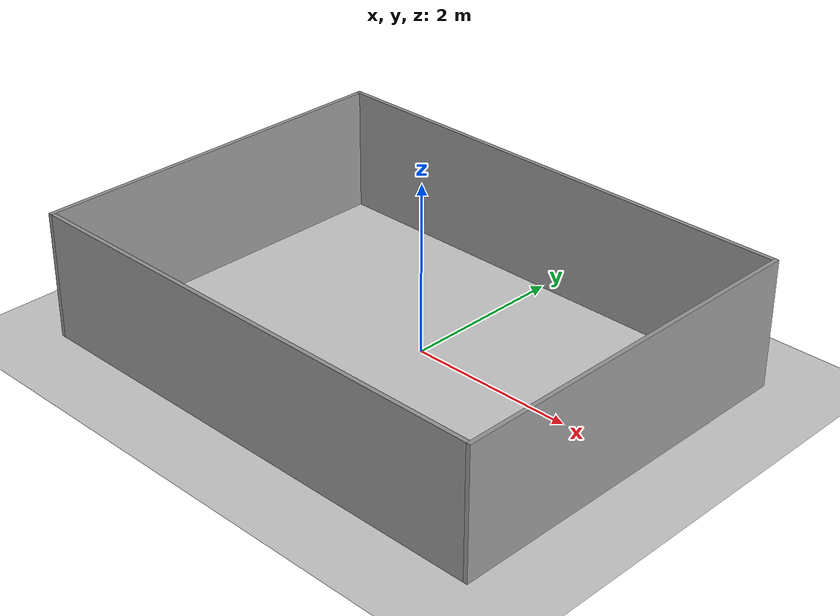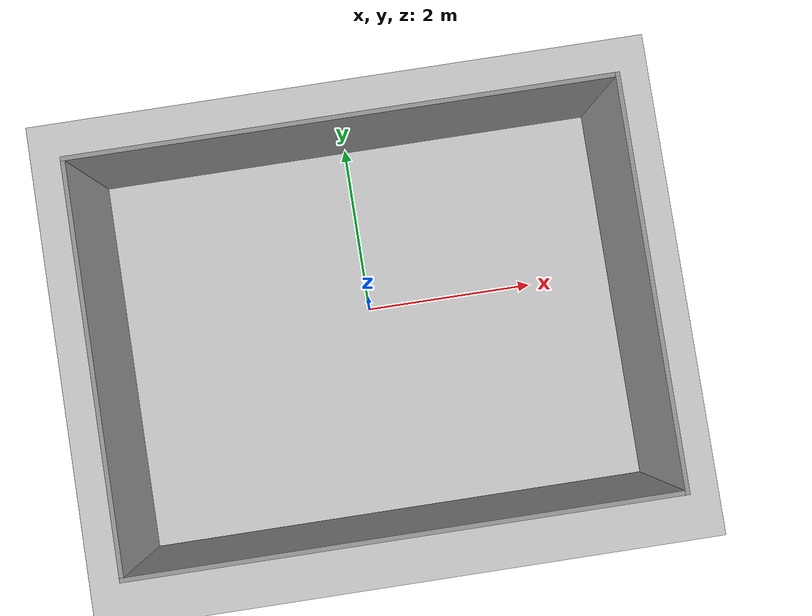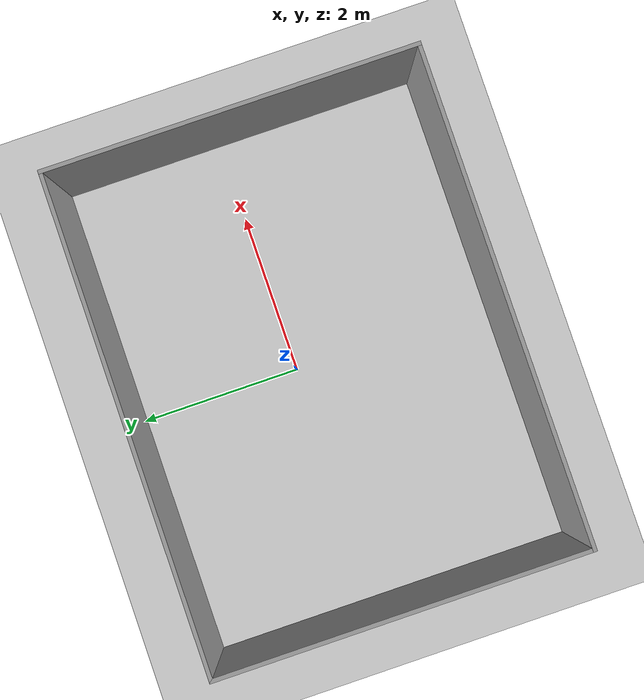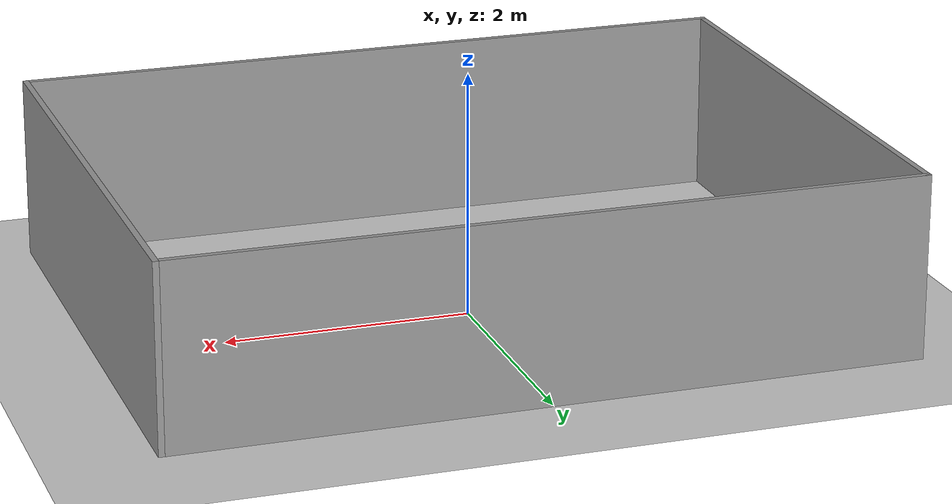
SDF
<?xml version="1.0" ?>
<sdf version="1.5">
  <world name="default">
    <!-- A global light source -->
    <include>
      <uri>model://sun</uri>
    </include>
    <!-- A ground plane -->
    <include>
      <uri>model://ground_plane</uri>
    </include>
    <!-- Big Arena -->
    <include>
      <uri>model://big_arena</uri>
      <pose>0 -0.25 0 0 0 1.5707</pose>
    </include>
  </world>
</sdf>

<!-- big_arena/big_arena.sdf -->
<sdf version='1.7'>
  <model name='big_arena'>
    <pose>0.25 0 0 0 -0 0</pose>
    <link name='Wall_0'>
      <collision name='Wall_0_Collision'>
        <geometry>
          <box>
            <size>6 0.05 1.5</size>
          </box>
        </geometry>
        <pose>0 0 0.75 0 -0 0</pose>
      </collision>
      <visual name='Wall_0_Visual'>
        <pose>0 0 0.75 0 -0 0</pose>
        <geometry>
          <box>
            <size>6 0.05 1.5</size>
          </box>
        </geometry>
        <material>
          <script>
            <uri>file://media/materials/scripts/gazebo.material</uri>
            <name>Gazebo/Grey</name>
          </script>
          <ambient>1 1 1 1</ambient>
        </material>
        <meta>
          <layer>0</layer>
        </meta>
      </visual>
      <pose>-2.25 0.025 0 0 -0 -1.5708</pose>
    </link>
    <link name='Wall_4'>
      <collision name='Wall_4_Collision'>
        <geometry>
          <box>
            <size>6 0.05 1.5</size>
          </box>
        </geometry>
        <pose>0 0 0.75 0 -0 0</pose>
      </collision>
      <visual name='Wall_4_Visual'>
        <pose>0 0 0.75 0 -0 0</pose>
        <geometry>
          <box>
            <size>6 0.05 1.5</size>
          </box>
        </geometry>
        <material>
          <script>
            <uri>file://media/materials/scripts/gazebo.material</uri>
            <name>Gazebo/Grey</name>
          </script>
          <ambient>1 1 1 1</ambient>
        </material>
        <meta>
          <layer>0</layer>
        </meta>
      </visual>
      <pose>2.25 0.025 0 0 -0 -1.5708</pose>
    </link>
    <link name='Wall_6'>
      <collision name='Wall_6_Collision'>
        <geometry>
          <box>
            <size>4.55 0.05 1.5</size>
          </box>
        </geometry>
        <pose>0 0 0.75 0 -0 0</pose>
      </collision>
      <visual name='Wall_6_Visual'>
        <pose>0 0 0.75 0 -0 0</pose>
        <geometry>
          <box>
            <size>4.55 0.05 1.5</size>
          </box>
        </geometry>
        <material>
          <script>
            <uri>file://media/materials/scripts/gazebo.material</uri>
            <name>Gazebo/Grey</name>
          </script>
          <ambient>1 1 1 1</ambient>
        </material>
        <meta>
          <layer>0</layer>
        </meta>
      </visual>
      <pose>0 -3 0 0 -0 0</pose>
    </link>
    <link name='Wall_8'>
      <collision name='Wall_8_Collision'>
        <geometry>
          <box>
            <size>4.55 0.05 1.5</size>
          </box>
        </geometry>
        <pose>0 0 0.75 0 -0 0</pose>
      </collision>
      <visual name='Wall_8_Visual'>
        <pose>0 0 0.75 0 -0 0</pose>
        <geometry>
          <box>
            <size>4.55 0.05 1.5</size>
          </box>
        </geometry>
        <material>
          <script>
            <uri>file://media/materials/scripts/gazebo.material</uri>
            <name>Gazebo/Grey</name>
          </script>
          <ambient>1 1 1 1</ambient>
        </material>
        <meta>
          <layer>0</layer>
        </meta>
      </visual>
      <pose>0 3 0 0 -0 0</pose>
    </link>
    <static>1</static>
  </model>
</sdf>
